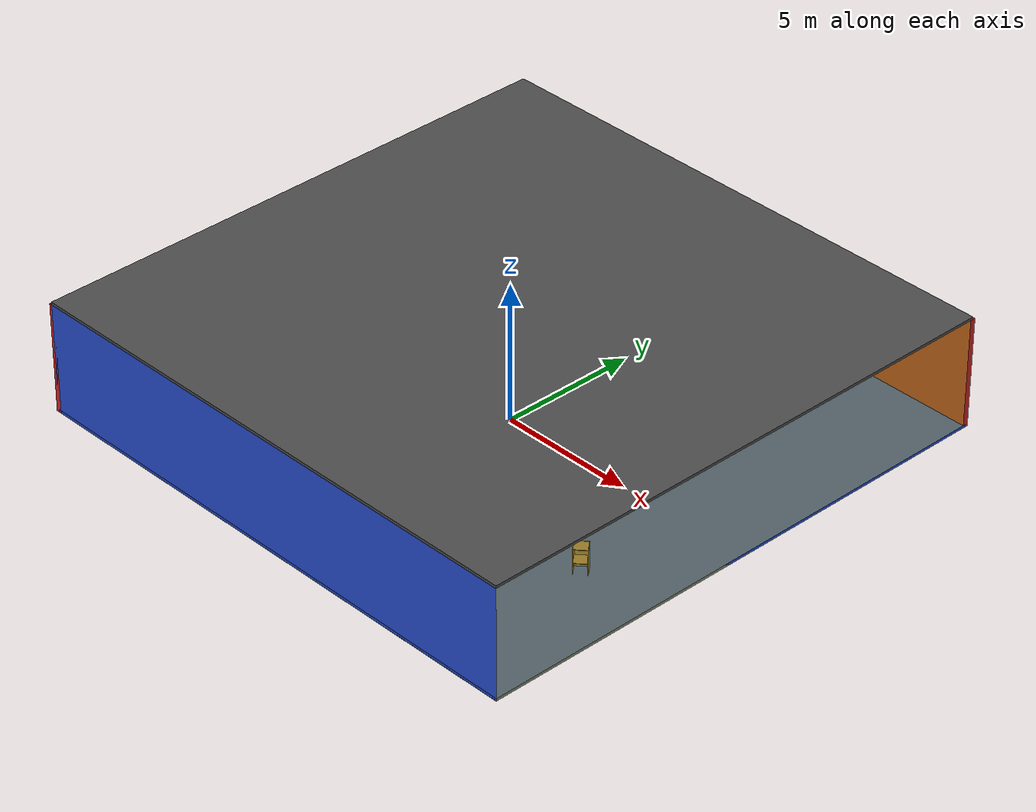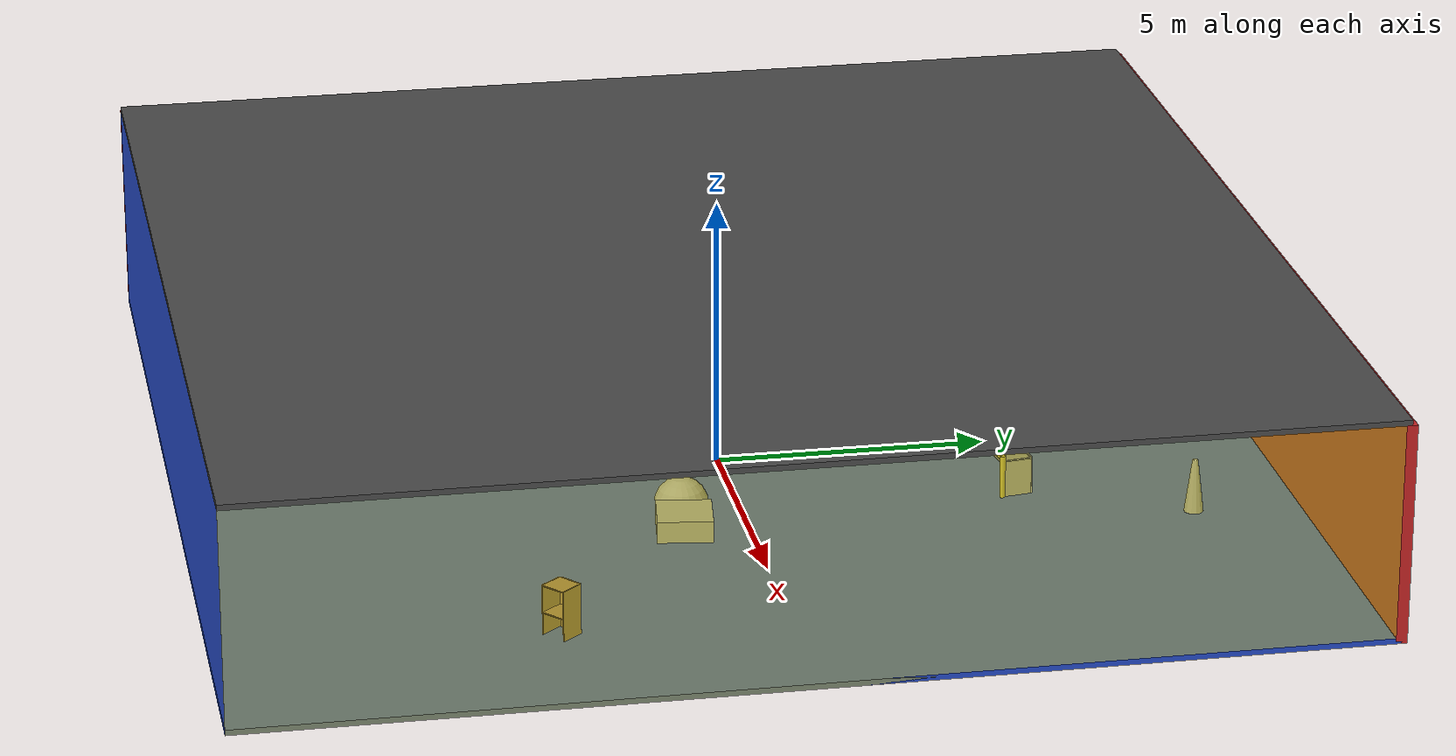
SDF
<sdf version="1.4">
 <world name="default">
  <physics type="ode">
   <max_step_size>0.001</max_step_size>
   <real_time_factor>1</real_time_factor>
   <real_time_update_rate>1000</real_time_update_rate>
   <gravity>0 0 -9.8</gravity>
  </physics>
  <scene><ambient>0.4 0.4 0.4 1</ambient><background>0.7 0.7 0.7 1</background><shadows>1</shadows></scene>
  <model name="Surrounding">
   <static>1</static>
   <link name="Ceiling">
    <collision name="Ceiling_Collision"><geometry><box><size>20 20 0.1</size></box></geometry></collision>
    <visual name="Ceiling_Visual">
     <geometry><box><size>20 20 0.1</size></box></geometry>
     <material>
      <script><uri>file://media/materials/scripts/gazebo.material</uri><name>Gazebo/DarkGrey</name></script>
     </material>
    </visual>
    <pose>0 0 4.05 0 0 0</pose>
   </link>
   <link name="Wall_South">
    <collision name="Wall_South_Collision">
     <geometry><box><size>20 0 4</size></box></geometry>
     <pose>0 0 2 0 -0 0</pose>
    </collision>
    <visual name="Wall_South_Visual">
     <pose>0 0 2 0 -0 0</pose>
     <geometry><box><size>20 0 4</size></box></geometry>
     <material>
      <script><uri>file://media/materials/scripts/gazebo.material</uri><name>Gazebo/Blue</name></script>
     </material>
    </visual>
    <velocity_decay><linear>0</linear><angular>0</angular></velocity_decay>
    <pose>0 -10 0 0 -0 0</pose>
   </link>
   <link name="Wall_East">
    <collision name="Wall_21_Collision">
     <geometry><box><size>20 0 4</size></box></geometry>
     <pose>0 0 2 0 -0 0</pose>
    </collision>
    <visual name="Wall_21_Visual">
     <pose>0 0 2 0 -0 0</pose>
     <geometry><box><size>20 0 4</size></box></geometry>
     <material>
      <script>
       <uri>file://media/materials/scripts/gazebo.material</uri>
       <name>Gazebo/YellowTransparent</name>
      </script>
     </material>
    </visual>
    <velocity_decay><linear>0</linear><angular>0</angular></velocity_decay>
    <pose>10 0 0 0 -0 1.5708</pose>
   </link>
   <link name="Wall_North">
    <collision name="Wall_22_Collision">
     <geometry><box><size>20 0.2 4</size></box></geometry>
     <pose>0 0 2 0 -0 0</pose>
    </collision>
    <visual name="Wall_22_Visual">
     <pose>0 0 2 0 -0 0</pose>
     <geometry><box><size>20 0.2 4</size></box></geometry>
     <material>
      <script><uri>file://media/materials/scripts/gazebo.material</uri><name>Gazebo/RedGlow</name></script>
     </material>
    </visual>
    <velocity_decay><linear>0</linear><angular>0</angular></velocity_decay>
    <pose>0 10 0 0 -0 0</pose>
   </link>
   <link name="Wall_West">
    <collision name="Wall_23_Collision">
     <geometry><box><size>20 0.2 4</size></box></geometry>
     <pose>0 0 2 0 -0 0</pose>
    </collision>
    <visual name="Wall_23_Visual">
     <pose>0 0 2 0 -0 0</pose>
     <geometry><box><size>20 0.2 4</size></box></geometry>
     <material>
      <script><uri>file://media/materials/scripts/gazebo.material</uri><name>Gazebo/RedGlow</name></script>
     </material>
    </visual>
    <velocity_decay><linear>0</linear><angular>0</angular></velocity_decay>
    <pose>-10 0 0 0 0 -1.5708</pose>
   </link>
   <link name="Ground_link">
    <collision name="collision">
     <pose>0 0 .05 0 -0 0</pose>
     <geometry><box><size>20 20 0.1</size></box></geometry>
    </collision>
    <visual name="visual">
     <pose>0 0 .05 0 -0 0</pose>
     <geometry><box><size>20 20 0.1</size></box></geometry>
     <material>
      <script><uri>file://media/materials/scripts/gazebo.material</uri><name>Gazebo/BlueGlow</name></script>
     </material>
    </visual>
   </link>
   <static>1</static>
  </model>
  <spherical_coordinates>
   <surface_model>EARTH_WGS84</surface_model>
   <latitude_deg>0</latitude_deg>
   <longitude_deg>0</longitude_deg>
   <elevation>0</elevation>
   <heading_deg>0</heading_deg>
  </spherical_coordinates>
  <light name="lightball_0" type="diffuse">
   <diffuse>0.8 0.8 0.8 1</diffuse>
   <specular>0.2 0.2 0.2 1</specular>
   <attenuation>
    <range>100</range>
    <constant>0.7</constant>
    <linear>0.01</linear>
    <quadratic>0.001</quadratic>
   </attenuation>
   <direction>-0.5 0.1 -0.9</direction>
   <pose>0.963752953877 5.51757188227 1.93670229943 0 0 0</pose>
  </light>
  <light name="lightball_1" type="diffuse">
   <diffuse>0.8 0.8 0.8 1</diffuse>
   <specular>0.2 0.2 0.2 1</specular>
   <attenuation>
    <range>100</range>
    <constant>0.7</constant>
    <linear>0.01</linear>
    <quadratic>0.001</quadratic>
   </attenuation>
   <direction>-0.5 0.1 -0.9</direction>
   <pose>4.20314413693 -9.66870386583 2.91098949398 0 0 0</pose>
  </light>
  <light name="lightball_2" type="diffuse">
   <diffuse>0.8 0.8 0.8 1</diffuse>
   <specular>0.2 0.2 0.2 1</specular>
   <attenuation>
    <range>100</range>
    <constant>0.7</constant>
    <linear>0.01</linear>
    <quadratic>0.001</quadratic>
   </attenuation>
   <direction>-0.5 0.1 -0.9</direction>
   <pose>4.76539609977 -0.265783555943 0.984844143608 0 0 0</pose>
  </light>
  <light name="lightball_3" type="diffuse">
   <diffuse>0.8 0.8 0.8 1</diffuse>
   <specular>0.2 0.2 0.2 1</specular>
   <attenuation>
    <range>100</range>
    <constant>0.7</constant>
    <linear>0.01</linear>
    <quadratic>0.001</quadratic>
   </attenuation>
   <direction>-0.5 0.1 -0.9</direction>
   <pose>-5.64536923467 -6.90334773812 1.19445882276 0 0 0</pose>
  </light>
  <light name="lightball_4" type="diffuse">
   <diffuse>0.8 0.8 0.8 1</diffuse>
   <specular>0.2 0.2 0.2 1</specular>
   <attenuation>
    <range>100</range>
    <constant>0.7</constant>
    <linear>0.01</linear>
    <quadratic>0.001</quadratic>
   </attenuation>
   <direction>-0.5 0.1 -0.9</direction>
   <pose>-5.53040268172 -8.4955921925 1.6379630814 0 0 0</pose>
  </light>
  <light name="lightball_5" type="diffuse">
   <diffuse>0.8 0.8 0.8 1</diffuse>
   <specular>0.2 0.2 0.2 1</specular>
   <attenuation>
    <range>100</range>
    <constant>0.7</constant>
    <linear>0.01</linear>
    <quadratic>0.001</quadratic>
   </attenuation>
   <direction>-0.5 0.1 -0.9</direction>
   <pose>1.42676631046 -8.01217389048 3.81877155442 0 0 0</pose>
  </light>
  <light name="lightball_6" type="diffuse">
   <diffuse>0.8 0.8 0.8 1</diffuse>
   <specular>0.2 0.2 0.2 1</specular>
   <attenuation>
    <range>100</range>
    <constant>0.7</constant>
    <linear>0.01</linear>
    <quadratic>0.001</quadratic>
   </attenuation>
   <direction>-0.5 0.1 -0.9</direction>
   <pose>5.55434408284 -3.86676497278 1.64443070754 0 0 0</pose>
  </light>
  <light name="lightball_7" type="diffuse">
   <diffuse>0.8 0.8 0.8 1</diffuse>
   <specular>0.2 0.2 0.2 1</specular>
   <attenuation>
    <range>100</range>
    <constant>0.7</constant>
    <linear>0.01</linear>
    <quadratic>0.001</quadratic>
   </attenuation>
   <direction>-0.5 0.1 -0.9</direction>
   <pose>-0.937116016751 -2.32626837735 1.33323830233 0 0 0</pose>
  </light>
  <include><uri>model://cabinet</uri><pose>-7.64985657748 -8.25087576918 0 0 0 1.58546962623</pose></include>
  <include>
   <uri>model://robocup_3Dsim_goal</uri>
   <pose>-8.23283884564 4.18472018705 0 0 0 0.113324477843</pose>
  </include>
  <include><uri>model://table</uri><pose>-1.3744067063 -6.95680149744 0 0 0 1.32033497209</pose></include>
  <include>
   <uri>model://construction_cone</uri>
   <pose>-1.92211770388 1.05835708927 0 0 0 1.29939075395</pose>
  </include>
  <include>
   <uri>model://robocup_3Dsim_goal</uri>
   <pose>-1.94078687369 4.02850048483 0 0 0 0.463210889544</pose>
  </include>
  <include>
   <uri>model://textured_shapes</uri>
   <pose>1.86371758767 -0.989339755073 0 0 0 1.43491968242</pose>
  </include>
  <include>
   <uri>model://robocup_3Dsim_goal</uri>
   <pose>1.79274601022 4.56725322483 0 0 0 1.71743333038</pose>
  </include>
  <include>
   <uri>model://construction_cone</uri>
   <pose>4.05722368891 7.95409965294 0 0 0 2.66908753941</pose>
  </include>
  <include><uri>model://cabinet</uri><pose>7.26204519829 -4.00204444209 0 0 0 2.26876661026</pose></include>
 </world>
</sdf>

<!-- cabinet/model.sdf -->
<sdf version="1.5">
  <model name="cabinet">
    <static>true</static>
    <link name="cabinet_bottom_plate">
      <inertial>
        <pose>0 0 -1 0 0 0</pose>
        <inertia>
          <ixx>2.050000</ixx>
          <ixy>0</ixy>
          <ixz>0</ixz>
          <iyy>2.050000</iyy>
          <iyz>0</iyz>
          <izz>2.050000</izz>
        </inertia>
        <mass>25.000000</mass>
      </inertial>
      <collision name="cabinet_bottom_plate_geom">
        <pose>0 0 0.010000 0 0 0</pose>
        <geometry>
          <box>
            <size>0.450000 0.450000 0.020000</size>
          </box>
        </geometry>
      </collision>
      <visual name="cabinet_bottom_plate_geom_visual">
        <pose>0 0 0.010000 0 0 0</pose>
        <geometry>
          <box>
            <size>0.450000 0.450000 0.020000</size>
          </box>
        </geometry>
        <material>
          <script>
            <uri>model://media/materials/scripts/gazebo.material</uri>
            <name>Gazebo/Wood</name>
          </script>
        </material>
      </visual>
      <collision name="cabinet_bottom_plate_geom_cabinet_back_plate">
        <pose>0.235000 0 0.510000 0 0 0</pose>
        <geometry>
          <box>
            <size>0.020000 0.450000 1.020000</size>
          </box>
        </geometry>
      </collision>
      <visual name="cabinet_bottom_plate_geom_cabinet_back_plate_visual">
        <pose>0.235000 0 0.510000 0 0 0</pose>
        <geometry>
          <box>
            <size>0.020000 0.450000 1.020000</size>
          </box>
        </geometry>
        <material>
          <script>
            <uri>model://media/materials/scripts/gazebo.material</uri>
            <name>Gazebo/Wood</name>
          </script>
        </material>
      </visual>
      <collision name="cabinet_bottom_plate_geom_cabinet_left_plate">
        <pose>0 0.235000 0.510000 0 0 0</pose>
        <geometry>
          <box>
            <size>0.450000 0.020000 1.020000</size>
          </box>
        </geometry>
      </collision>
      <visual name="cabinet_bottom_plate_geom_cabinet_left_plate_visual">
        <pose>0 0.235000 0.510000 0 0 0</pose>
        <geometry>
          <box>
            <size>0.450000 0.020000 1.020000</size>
          </box>
        </geometry>
        <material>
          <script>
            <uri>model://media/materials/scripts/gazebo.material</uri>
            <name>Gazebo/Wood</name>
          </script>
        </material>
      </visual>
      <collision name="cabinet_bottom_plate_geom_cabinet_middle_plate">
        <pose>0 0 0.510000 0 0 0</pose>
        <geometry>
          <box>
            <size>0.450000 0.450000 0.020000</size>
          </box>
        </geometry>
      </collision>
      <visual name="cabinet_bottom_plate_geom_cabinet_middle_plate_visual">
        <pose>0 0 0.510000 0 0 0</pose>
        <geometry>
          <box>
            <size>0.450000 0.450000 0.020000</size>
          </box>
        </geometry>
        <material>
          <script>
            <uri>model://media/materials/scripts/gazebo.material</uri>
            <name>Gazebo/Wood</name>
          </script>
        </material>
      </visual>
      <collision name="cabinet_bottom_plate_geom_cabinet_right_plate">
        <pose>0 -0.235000 0.510000 0 0 0</pose>
        <geometry>
          <box>
            <size>0.450000 0.020000 1.020000</size>
          </box>
        </geometry>
      </collision>
      <visual name="cabinet_bottom_plate_geom_cabinet_right_plate_visual">
        <pose>0 -0.235000 0.510000 0 0 0</pose>
        <geometry>
          <box>
            <size>0.450000 0.020000 1.020000</size>
          </box>
        </geometry>
        <material>
          <script>
            <uri>model://media/materials/scripts/gazebo.material</uri>
            <name>Gazebo/Wood</name>
          </script>
        </material>
      </visual>
      <collision name="cabinet_bottom_plate_geom_cabinet_top_plate">
        <pose>0 0 1.010000 0 0 0</pose>
        <geometry>
          <box>
            <size>0.450000 0.450000 0.020000</size>
          </box>
        </geometry>
      </collision>
      <visual name="cabinet_bottom_plate_geom_cabinet_top_plate_visual">
        <pose>0 0 1.010000 0 0 0</pose>
        <geometry>
          <box>
            <size>0.450000 0.450000 0.020000</size>
          </box>
        </geometry>
        <material>
          <script>
            <uri>model://media/materials/scripts/gazebo.material</uri>
            <name>Gazebo/Wood</name>
          </script>
        </material>
      </visual>
    </link>
  </model>
</sdf>

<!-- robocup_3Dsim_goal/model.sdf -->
<sdf version="1.5">
  <model name="robocup_3d_goal">
    <static>true</static>
    <link name="left_post">
      <pose>0 1.05 0.45 0 0 0</pose>
      <collision name="collision">
        <geometry>
          <cylinder>
            <radius>0.05</radius>
            <length>0.9</length>
          </cylinder>
        </geometry>
      </collision>
      <visual name="visual">
        <geometry>
          <cylinder>
            <radius>0.05</radius>
            <length>0.9</length>
          </cylinder>
        </geometry>
        <material>
          <script>
            <uri>file://media/materials/scripts/gazebo.material</uri>
            <name>Gazebo/ZincYellow</name>
          </script>
        </material>
      </visual>
    </link>
    <link name="left_support_horiz_lower">
      <pose>0.30 1.05 0.01 0 0 0</pose>
      <collision name="collision">
        <geometry>
          <box>
            <size>0.50 0.02 0.02</size>
          </box>
        </geometry>
      </collision>
      <visual name="visual">
        <geometry>
          <box>
            <size>0.50 0.02 0.02</size>
          </box>
        </geometry>
        <material>
          <script>
            <uri>file://media/materials/scripts/gazebo.material</uri>
            <name>Gazebo/White</name>
          </script>
        </material>
      </visual>
    </link>
    <link name="left_support_horiz_upper">
      <pose>0.30 1.05 0.79 0 0 0</pose>
      <collision name="collision">
        <geometry>
          <box>
            <size>0.50 0.02 0.02</size>
          </box>
        </geometry>
      </collision>
      <visual name="visual">
        <geometry>
          <box>
            <size>0.50 0.02 0.02</size>
          </box>
        </geometry>
        <material>
          <script>
            <uri>file://media/materials/scripts/gazebo.material</uri>
            <name>Gazebo/White</name>
          </script>
        </material>
      </visual>
    </link>
    <link name="left_support_vertical">
      <pose>0.56 1.05 0.4 0 1.5708 0</pose>
      <collision name="collision">
        <geometry>
          <box>
            <size>0.80 0.02 0.02</size>
          </box>
        </geometry>
      </collision>
      <visual name="visual">
        <geometry>
          <box>
            <size>0.80 0.02 0.02</size>
          </box>
        </geometry>
        <material>
          <script>
            <uri>file://media/materials/scripts/gazebo.material</uri>
            <name>Gazebo/White</name>
          </script>
        </material>
      </visual>
    </link>
    <link name="right_support_horiz_lower">
      <pose>0.30 -1.05 0.01 0 0 0</pose>
      <collision name="collision">
        <geometry>
          <box>
            <size>0.50 0.02 0.02</size>
          </box>
        </geometry>
      </collision>
      <visual name="visual">
        <geometry>
          <box>
            <size>0.50 0.02 0.02</size>
          </box>
        </geometry>
        <material>
          <script>
            <uri>file://media/materials/scripts/gazebo.material</uri>
            <name>Gazebo/White</name>
          </script>
        </material>
      </visual>
    </link>
    <link name="right_support_horiz_upper">
      <pose>0.30 -1.05 0.79 0 0 0</pose>
      <collision name="collision">
        <geometry>
          <box>
            <size>0.50 0.02 0.02</size>
          </box>
        </geometry>
      </collision>
      <visual name="visual">
        <geometry>
          <box>
            <size>0.50 0.02 0.02</size>
          </box>
        </geometry>
        <material>
          <script>
            <uri>file://media/materials/scripts/gazebo.material</uri>
            <name>Gazebo/White</name>
          </script>
        </material>
      </visual>
    </link>
    <link name="right_support_vertical">
      <pose>0.56 -1.05 0.4 0 1.5708 0</pose>
      <collision name="collision">
        <geometry>
          <box>
            <size>0.80 0.02 0.02</size>
          </box>
        </geometry>
      </collision>
      <visual name="visual">
        <geometry>
          <box>
            <size>0.80 0.02 0.02</size>
          </box>
        </geometry>
        <material>
          <script>
            <uri>file://media/materials/scripts/gazebo.material</uri>
            <name>Gazebo/White</name>
          </script>
        </material>
      </visual>
    </link>
    <link name="center_support_horiz_lower">
      <pose>0.56 0 0.01 0 1.5708 0</pose>
      <collision name="collision">
        <geometry>
          <box>
            <size>0.02 2.08 0.02</size>
          </box>
        </geometry>
      </collision>
      <visual name="visual">
        <geometry>
          <box>
            <size>0.02 2.08 0.02</size>
          </box>
        </geometry>
        <material>
          <script>
            <uri>file://media/materials/scripts/gazebo.material</uri>
            <name>Gazebo/White</name>
          </script>
        </material>
      </visual>
    </link>
    <link name="center_support_horiz_upper">
      <pose>0.56 0 0.79 0 1.5708 0</pose>
      <collision name="collision">
        <geometry>
          <box>
            <size>0.02 2.08 0.02</size>
          </box>
        </geometry>
      </collision>
      <visual name="visual">
        <geometry>
          <box>
            <size>0.02 2.08 0.02</size>
          </box>
        </geometry>
        <material>
          <script>
            <uri>file://media/materials/scripts/gazebo.material</uri>
            <name>Gazebo/White</name>
          </script>
        </material>
      </visual>
    </link>
    <link name="right_post">
      <pose>0 -1.05 0.45 0 0 0</pose>
      <collision name="collision">
        <geometry>
          <cylinder>
            <radius>0.05</radius>
            <length>0.9</length>
          </cylinder>
        </geometry>
      </collision>
      <visual name="visual">
        <geometry>
          <cylinder>
            <radius>0.05</radius>
            <length>0.9</length>
          </cylinder>
        </geometry>
        <material>
          <script>
            <uri>file://media/materials/scripts/gazebo.material</uri>
            <name>Gazebo/ZincYellow</name>
          </script>
        </material>
      </visual>
    </link>
    <link name="crossbar">
      <pose>0 0 0.85 1.57 1.57 0</pose>
      <collision name="collision">
        <geometry>
          <cylinder>
            <radius>0.05</radius>
            <length>2.0</length>
          </cylinder>
        </geometry>
      </collision>
      <visual name="visual">
        <geometry>
          <cylinder>
            <radius>0.05</radius>
            <length>2.0</length>
          </cylinder>
        </geometry>
        <material>
          <script>
            <uri>file://media/materials/scripts/gazebo.material</uri>
            <name>Gazebo/ZincYellow</name>
          </script>
        </material>
      </visual>
    </link>
    <link name="center_net">
      <pose>0.56 0 0.40 0 0 0</pose>
      <collision name="collision">
        <geometry>
          <box>
            <size>0.01 2.1 0.80</size>
          </box>
        </geometry>
      </collision>
      <visual name="visual">
        <geometry>
          <box>
            <size>0.01 2.1 0.80</size>
          </box>
        </geometry>
        <material>
          <script>
            <uri>model://../model_source/models/robocup09_spl_field/materials/scripts/</uri>
            <uri>model://../model_source/models/robocup09_spl_field/materials/textures/</uri>
            <name>RoboCup/Net</name>
          </script>
        </material>
      </visual>
    </link>
    <link name="left_net">
      <pose>0.30 1.05 0.40 0 0 0</pose>
      <collision name="collision">
        <geometry>
          <box>
            <size>0.50 0.01 0.76</size>
          </box>
        </geometry>
      </collision>
      <visual name="visual">
        <geometry>
          <box>
            <size>0.50 0.01 0.76</size>
          </box>
        </geometry>
        <material>
          <script>
            <uri>model://../model_source/models/robocup09_spl_field/materials/scripts/</uri>
            <uri>model://../model_source/models/robocup09_spl_field/materials/textures/</uri>
            <name>RoboCup/Net</name>
          </script>
        </material>
      </visual>
    </link>
    <link name="right_net">
      <pose>0.30 -1.05 0.40 0 0 0</pose>
      <collision name="collision">
        <geometry>
          <box>
            <size>0.50 0.01 0.76</size>
          </box>
        </geometry>
      </collision>
      <visual name="visual">
        <geometry>
          <box>
            <size>0.50 0.01 0.76</size>
          </box>
        </geometry>
        <material>
          <script>
            <uri>model://../model_source/models/robocup09_spl_field/materials/scripts/</uri>
            <uri>model://../model_source/models/robocup09_spl_field/materials/textures/</uri>
            <name>RoboCup/Net</name>
          </script>
        </material>
      </visual>
    </link>
  </model>
</sdf>

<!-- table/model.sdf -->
<sdf version="1.5">
  <model name="table">
    <static>true</static>
    <link name="link">
      <collision name="surface">
        <pose>0 0 1.0 0 0 0</pose>
        <geometry>
          <box>
            <size>1.5 0.8 0.03</size>
          </box>
        </geometry>
        <surface>
          <friction>
            <ode>
              <mu>0.6</mu>
              <mu2>0.6</mu2>
            </ode>
          </friction>
        </surface>
      </collision>
      <visual name="visual1">
        <pose>0 0 1.0 0 0 0</pose>
        <geometry>
          <box>
            <size>1.5 0.8 0.03</size>
          </box>
        </geometry>
        <material>
          <script>
            <uri>model://media/materials/scripts/gazebo.material</uri>
            <name>Gazebo/Wood</name>
          </script>
        </material>
      </visual>
      <collision name="front_left_leg">
        <pose>0.68 0.38 0.5 0 0 0</pose>
        <geometry>
          <cylinder>
            <radius>0.02</radius>
            <length>1.0</length>
          </cylinder>
        </geometry>
      </collision>
      <visual name="front_left_leg">
        <pose>0.68 0.38 0.5 0 0 0</pose>
        <geometry>
          <cylinder>
            <radius>0.02</radius>
            <length>1.0</length>
          </cylinder>
        </geometry>
        <material>
          <script>
            <uri>model://media/materials/scripts/gazebo.material</uri>
            <name>Gazebo/Grey</name>
          </script>
        </material>
      </visual>
      <collision name="front_right_leg">
        <pose>0.68 -0.38 0.5 0 0 0</pose>
        <geometry>
          <cylinder>
            <radius>0.02</radius>
            <length>1.0</length>
          </cylinder>
        </geometry>
      </collision>
      <visual name="front_right_leg">
        <pose>0.68 -0.38 0.5 0 0 0</pose>
        <geometry>
          <cylinder>
            <radius>0.02</radius>
            <length>1.0</length>
          </cylinder>
        </geometry>
        <material>
          <script>
            <uri>model://media/materials/scripts/gazebo.material</uri>
            <name>Gazebo/Grey</name>
          </script>
        </material>
      </visual>
      <collision name="back_right_leg">
        <pose>-0.68 -0.38 0.5 0 0 0</pose>
        <geometry>
          <cylinder>
            <radius>0.02</radius>
            <length>1.0</length>
          </cylinder>
        </geometry>
      </collision>
      <visual name="back_right_leg">
        <pose>-0.68 -0.38 0.5 0 0 0</pose>
        <geometry>
          <cylinder>
            <radius>0.02</radius>
            <length>1.0</length>
          </cylinder>
        </geometry>
        <material>
          <script>
            <uri>model://media/materials/scripts/gazebo.material</uri>
            <name>Gazebo/Grey</name>
          </script>
        </material>
      </visual>
      <collision name="back_left_leg">
        <pose>-0.68 0.38 0.5 0 0 0</pose>
        <geometry>
          <cylinder>
            <radius>0.02</radius>
            <length>1.0</length>
          </cylinder>
        </geometry>
      </collision>
      <visual name="back_left_leg">
        <pose>-0.68 0.38 0.5 0 0 0</pose>
        <geometry>
          <cylinder>
            <radius>0.02</radius>
            <length>1.0</length>
          </cylinder>
        </geometry>
        <material>
          <script>
            <uri>model://media/materials/scripts/gazebo.material</uri>
            <name>Gazebo/Grey</name>
          </script>
        </material>
      </visual>
    </link>
  </model>
</sdf>

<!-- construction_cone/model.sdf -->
<sdf version="1.5">
  <model name="Construction Cone">
    <link name="link">
      <collision name="collision">
        <geometry>
          <mesh>
            <scale>10 10 10</scale>
            <uri>file://isr-testbed/construction_cone/meshes/construction_cone.dae</uri>
          </mesh>
        </geometry>
      </collision>
      <visual name="visual">
        <geometry>
          <mesh>
            <scale>10 10 10</scale>
            <uri>file://isr-testbed/construction_cone/meshes/construction_cone.dae</uri>
          </mesh>
        </geometry>
      </visual>
    </link>
  </model>
</sdf>

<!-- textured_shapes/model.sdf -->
<sdf version="1.6">
  <model name="textured_shapes">
    <pose>0 0 0.5 0 0 0</pose>
    <link name="box">
      <pose>0 -1.5 0 0 0 0</pose>
      <collision name="collision">
        <geometry>
          <box>
            <size>1 1 1</size>
          </box>
        </geometry>
      </collision>
      <visual name="visual">
        <geometry>
          <box>
            <size>1 1 1</size>
          </box>
        </geometry>
        <material>
          <script>
            <uri>model://../model_source/models/textured_shapes/materials/scripts</uri>
            <uri>model://../model_source/models/textured_shapes/materials/textures</uri>
            <name>TexturedShape/Squares</name>
          </script>
        </material>
      </visual>
    </link>
    <link name="sphere">
      <collision name="collision">
        <geometry>
          <sphere>
            <radius>0.5</radius>
          </sphere>
        </geometry>
      </collision>
      <visual name="visual">
        <geometry>
          <sphere>
            <radius>0.5</radius>
          </sphere>
        </geometry>
        <material>
          <script>
            <uri>model://../model_source/models/textured_shapes/materials/scripts</uri>
            <uri>model://../model_source/models/textured_shapes/materials/textures</uri>
            <name>TexturedShape/Squares</name>
          </script>
        </material>
      </visual>
    </link>
    <link name="cylinder">
      <pose>0 1.5 0 0 0 0</pose>
      <collision name="collision">
        <geometry>
          <cylinder>
            <radius>0.5</radius>
            <length>1</length>
          </cylinder>
        </geometry>
      </collision>
      <visual name="visual">
        <geometry>
          <cylinder>
            <radius>0.5</radius>
            <length>1</length>
          </cylinder>
        </geometry>
        <material>
          <script>
            <uri>model://../model_source/models/textured_shapes/materials/scripts</uri>
            <uri>model://../model_source/models/textured_shapes/materials/textures</uri>
            <name>TexturedShape/Squares</name>
          </script>
        </material>
      </visual>
    </link>
  </model>
</sdf>
